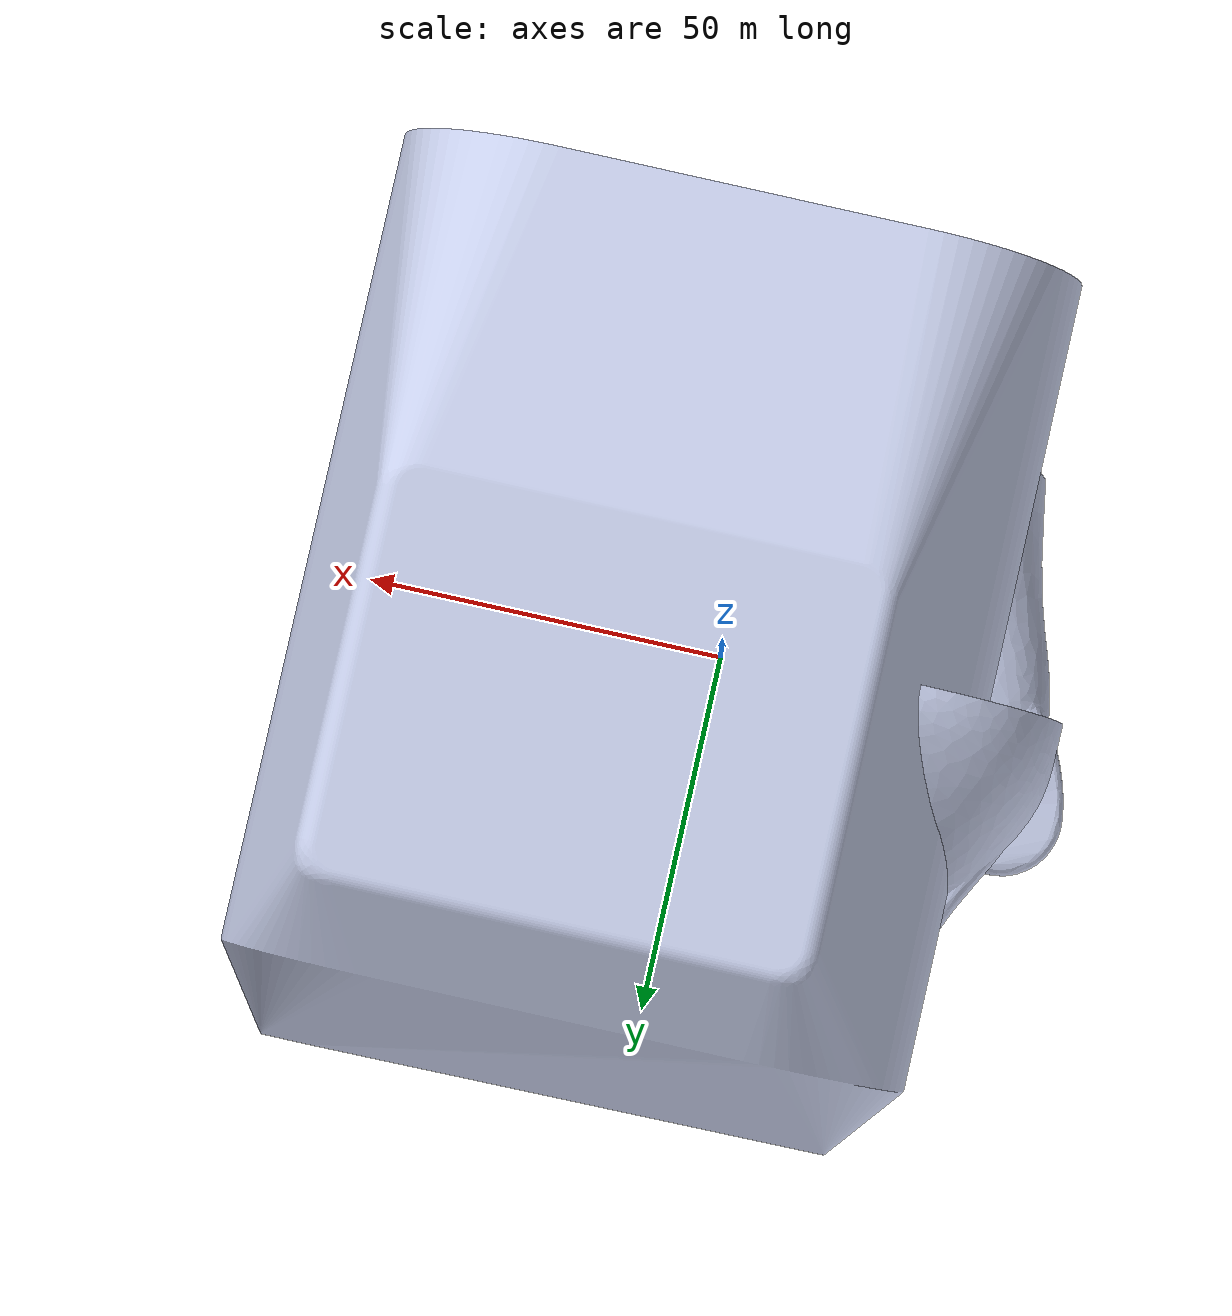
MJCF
<mujoco model="orcahand_left">
  <compiler angle="radian" meshdir="meshes/" autolimits="true" />
  <default>
    <geom density="800" condim="1" contype="0" conaffinity="0" />
    <position kp="300" dampratio="1.0" inheritrange="1" />
    <joint damping="0.0" armature="1.0" frictionloss="0.0" />
    <site size="0.005" type="sphere" rgba="1 0 0 1" group="3" />
  </default>
  <asset>
    <mesh name="left_ForeArmStructure-Model" file="left/ForeArmStructure-Model.stl" />
    <mesh name="left_ForeArmStructure-Model_Logo" file="left/ForeArmStructure-Model_Logo.stl" />
    <mesh name="left_I-AP-L" file="left/I-AP-L.stl" />
    <mesh name="left_I-FingerTipAssembly_I-DP-Skin" file="left/I-FingerTipAssembly_I-DP-Skin.stl" />
    <mesh name="left_I-IP_IP" file="left/I-IP_IP.stl" />
    <mesh name="left_I-PP" file="left/I-PP.stl" />
    <mesh name="left_I-PP_PP" file="left/I-PP_PP.stl" />
    <mesh name="left_I-PP_Skin" file="left/I-PP_Skin.stl" />
    <mesh name="left_L-Carpals" file="left/L-Carpals.stl" />
    <mesh name="left_L-T-AP" file="left/L-T-AP.stl" />
    <mesh name="left_M-AP" file="left/M-AP.stl" />
    <mesh name="left_M-FingerTipAssembly_M-DP-Skin" file="left/M-FingerTipAssembly_M-DP-Skin.stl" />
    <mesh name="left_M-IP_IP" file="left/M-IP_IP.stl" />
    <mesh name="left_M-PP" file="left/M-PP.stl" />
    <mesh name="left_M-PP_PP" file="left/M-PP_PP.stl" />
    <mesh name="left_M-PP_Skin" file="left/M-PP_Skin.stl" />
    <mesh name="left_P-AP" file="left/P-AP.stl" />
    <mesh name="left_P-FingerTipAssembly_P-DP-Skin" file="left/P-FingerTipAssembly_P-DP-Skin.stl" />
    <mesh name="left_P-IP_IP" file="left/P-IP_IP.stl" />
    <mesh name="left_P-PP" file="left/P-PP.stl" />
    <mesh name="left_P-PP_PP" file="left/P-PP_PP.stl" />
    <mesh name="left_P-PP_Skin" file="left/P-PP_Skin.stl" />
    <mesh name="left_T-DP_Skin" file="left/T-DP_Skin.stl" />
    <mesh name="left_T-DP_T-DP" file="left/T-DP_T-DP.stl" />
    <mesh name="left_T-PP" file="left/T-PP.stl" />
    <mesh name="left_T-PP_PP" file="left/T-PP_PP.stl" />
    <mesh name="left_T-PP_Skin" file="left/T-PP_Skin.stl" />
    <mesh name="left_T-TP-L" file="left/T-TP-L.stl" />
    <mesh name="left_TopTower-Model" file="left/TopTower-Model.stl" />
  </asset>
  <worldbody>
    <body name="left_base_tx">
      <inertial pos="0 0 0" mass="0.1" diaginertia="0.01 0.01 0.01" />
      <joint name="left_pos_x" pos="0 0 0" axis="1 0 0" type="slide" range="-5 5" />
      <body name="left_base_ty">
        <inertial pos="0 0 0" mass="0.1" diaginertia="0.01 0.01 0.01" />
        <joint name="left_pos_y" pos="0 0 0" axis="0 1 0" type="slide" range="-5 5" />
        <body name="left_base_tz">
          <inertial pos="0 0 0" mass="0.1" diaginertia="0.01 0.01 0.01" />
          <joint name="left_pos_z" pos="0 0 0" axis="0 0 1" type="slide" range="-5 5" />
          <body name="left_base_roll">
            <inertial pos="0 0 0" mass="0.1" diaginertia="0.01 0.01 0.01" />
            <joint name="left_rot_x" pos="0 0 0" axis="1 0 0" type="hinge" range="-6.28 6.28" />
            <body name="left_base_pitch">
              <inertial pos="0 0 0" mass="0.1" diaginertia="0.01 0.01 0.01" />
              <joint name="left_rot_y" pos="0 0 0" axis="0 1 0" type="hinge" range="-6.28 6.28" />
              <body name="left_base_yaw">
                <inertial pos="0 0 0" mass="0.1" diaginertia="0.01 0.01 0.01" />
                <joint name="left_rot_z" pos="0 0 0" axis="0 0 1" type="hinge" range="-6.28 6.28" />
                <body name="left_hand_palm" pos="0 0 0">
                  <inertial pos="0.006 0.001 0.039" mass="0.72" diaginertia="0.000713 0.000814 0.000208" />
                  <geom type="mesh" contype="0" conaffinity="0" group="1" density="0" rgba="0.79 0.82 0.93 1" mesh="left_ForeArmStructure-Model" name="left_hand_palm_visual" />
                  <geom name="collision_hand_left_palm_0" type="box" size="0.016 0.035 0.035" pos="0 0 0.05" group="3" rgba="0 1 0 1" />
                  <site name="left_palm" pos="0 0 0.05" type="box" size="0.01 0.02 0.03" />
                  <body name="left_forearm" pos="0 0 0" quat="1 0 0 0">
                    <geom type="mesh" contype="0" conaffinity="0" group="1" density="0" rgba="0.79 0.82 0.93 1" mesh="left_ForeArmStructure-Model" />
                    <body name="left_toptower" pos="-0.01000000000000002 0.05230000000000584 -2.08e-17" quat="-0.4999999999999985 0.4999999999999986 -0.5 -0.4999999999999999">
                      <geom type="mesh" contype="0" conaffinity="0" group="1" density="0" rgba="0.79 0.82 0.93 1" mesh="left_TopTower-Model" />
                      <body name="left_carpals" pos="-0.001877078063108616 0.005000000000000039 0.08950000067055244" quat="-0.7071067811865475 0 0 0.7071067811865495">
                        <inertial pos="0 0 0" mass="0.1" diaginertia="1e-4 1e-4 1e-4" />
                        <joint name="left_wrist" pos="0 0 0" axis="-1 -1.13e-16 5.94e-17" range="-1.134464 0.61086524" ref="0.0" />
                        <geom type="mesh" contype="0" conaffinity="0" group="1" density="0" rgba="0.79 0.82 0.93 1" mesh="left_L-Carpals" />
                        <body name="left_thumb_cmc" pos="-0.02121341227594994 0.01433246945435063 -0.02172481544690429" quat="0.6591193783565908 0.3595106003611906 -0.07247312029417424 -0.656552678874735">
                          <inertial pos="0 0 0" mass="0.01" diaginertia="1e-6 1e-6 1e-6" />
                          <joint name="left_t-cmc" pos="0 0 0" axis="-7.77e-16 5.41e-16 -1" range="-0.78539816 0.57595865" ref="0.0" />
                          <geom type="mesh" contype="0" conaffinity="0" group="1" density="0" rgba="0.79 0.82 0.93 1" mesh="left_T-TP-L" />
                          <geom name="collision_hand_left_thumb_3" type="capsule" size="0.0120" fromto="0 0 0.0200 0 0 0" group="3" rgba="0 1 0 1" />
                          <body name="left_thumb_ap" pos="-0.036 1.39e-17 -7.63e-17" quat="0.819152044288991 -0.5735764363510464 -2.22e-16 -1.55e-15">
                            <inertial pos="0 0 0" mass="0.01" diaginertia="1e-6 1e-6 1e-6" />
                            <joint name="left_t-abd" pos="0 0 0" axis="-1.5e-15 0.3420201433256641 0.9396926207859044" range="-0.31415927 0.95993109" ref="0.0" />
                            <geom type="mesh" contype="0" conaffinity="0" group="1" density="0" rgba="0.79 0.82 0.93 1" mesh="left_L-T-AP" />
                            <geom name="collision_hand_left_thumb_2" type="capsule" size="0.0120" fromto="0 0 0.0280 0 0 0" group="3" rgba="0 1 0 1" />
                            <body name="left_thumb_pp" pos="5.03e-17 1.02e-17 2.91e-17" quat="1.22e-15 0.7071067811865461 -1.39e-15 -0.7071067811865444">
                              <inertial pos="0 0 0" mass="0.01" diaginertia="1e-6 1e-6 1e-6" />
                              <joint name="left_t-mcp" pos="0 0 0" axis="-3.14e-15 -1 2.94e-15" range="-0.43633231 1.7453293" ref="0.0" />
                              <geom type="mesh" contype="0" conaffinity="0" group="1" density="0" rgba="0.79 0.82 0.93 1" mesh="left_T-PP" />
                              <geom name="collision_hand_left_thumb_1" type="capsule" size="0.0100" fromto="0 0 0.0300 0 0 0" group="3" rgba="0 1 0 1" />
                              <body name="left_thumb_dp" pos="0.001 5.2e-18 0.032" quat="1 0 -2.78e-17 -1.92e-15">
                                <inertial pos="0 0 0" mass="0.01" diaginertia="1e-6 1e-6 1e-6" />
                                <joint name="left_t-pip" pos="0 0 0" axis="4.72e-16 -1 3.16e-15" range="-0.26179939 1.8675023" ref="0.0" />
                                <geom name="collision_hand_left_thumb_0" type="capsule" size="0.0070" fromto="0 0 0.0200 0 0 0" group="3" rgba="0 1 0 1" />
                                <site name="left_thumb_tip" pos="0 0 0.0150" />
                                <site name="track_hand_left_thumb_tip" pos="0 0 0.0150" />
                                <site name="trace_hand_left_thumb_tip" pos="0 0 0.0150" />
                              </body>
                            </body>
                          </body>
                        </body>
                        <body name="left_index_ap" pos="-0.02557548169125012 0.0006809253025602396 0.03835732632869239" quat="0.519646788331587 0.5667240334680995 0.4317303415794619 -0.4715930421730138">
                          <inertial pos="0 0 0" mass="0.01" diaginertia="1e-6 1e-6 1e-6" />
                          <joint name="left_i-abd" pos="0 0 0" axis="-8.330000000000001e-17 3.33e-16 1" range="-0.43633231 0.52359878" ref="0.0" />
                          <geom type="mesh" contype="0" conaffinity="0" group="1" density="0" rgba="0.79 0.82 0.93 1" mesh="left_I-AP-L" />
                          <geom name="collision_hand_left_index_2" type="capsule" size="0.0100" fromto="0 0 0.0250 0 0 0" group="3" rgba="0 1 0 1" />
                          <body name="left_index_pp" pos="-0.0004009681508766414 -1.76e-17 2.89e-15" quat="0.7071067811865461 1.85e-15 -0.7071067811865465 -2.05e-15">
                            <inertial pos="0 0 0" mass="0.01" diaginertia="1e-6 1e-6 1e-6" />
                            <joint name="left_i-mcp" pos="0 0 0" axis="5.83e-15 -1 1.11e-16" range="-0.43633231 1.7453293" ref="0.0" />
                            <geom type="mesh" contype="0" conaffinity="0" group="1" density="0" rgba="0.79 0.82 0.93 1" mesh="left_I-PP" />
                            <geom name="collision_hand_left_index_1" type="capsule" size="0.0090" fromto="0 0 0.0370 0 0 0" group="3" rgba="0 1 0 1" />
                            <body name="left_index_tip" pos="0.0015 8.669999999999999e-18 0.037" quat="1 1.67e-16 4.16e-17 3.39e-15">
                              <inertial pos="0 0 0" mass="0.01" diaginertia="1e-6 1e-6 1e-6" />
                              <joint name="left_i-pip" pos="0 0 0" axis="-3.61e-15 -1 2.78e-16" range="-0.26179939 1.8675023" ref="0.0" />
                              <geom name="collision_hand_left_index_0" type="capsule" size="0.0070" fromto="0 0 0.0220 0 0 0" group="3" rgba="0 1 0 1" />
                              <site name="left_index_tip" pos="0 0 0.0150" />
                              <site name="track_hand_left_index_tip" pos="0 0 0.0150" />
                              <site name="trace_hand_left_index_tip" pos="0 0 0.0150" />
                            </body>
                          </body>
                        </body>
                        <body name="left_middle_ap" pos="-0.0007567300518294843 -0.001146326008916961 0.04825182678794436" quat="-0.5006540699144025 -0.5006540699144022 -0.4993450733492283 0.4993450733492286">
                          <inertial pos="0 0 0" mass="0.01" diaginertia="1e-6 1e-6 1e-6" />
                          <joint name="left_m-abd" pos="0 0 0" axis="1.11e-15 -2.22e-16 1" range="-0.4712389 0.4712389" ref="0.0" />
                          <geom type="mesh" contype="0" conaffinity="0" group="1" density="0" rgba="0.79 0.82 0.93 1" mesh="left_M-AP" />
                          <geom name="collision_hand_left_middle_2" type="capsule" size="0.0100" fromto="0 0 0.0250 0 0 0" group="3" rgba="0 1 0 1" />
                          <body name="left_middle_pp" pos="-0.000616967942905312 -1.84e-17 4.37e-15" quat="-0.7071067811865464 -2.22e-15 0.7071067811865461 2.22e-15">
                            <inertial pos="0 0 0" mass="0.01" diaginertia="1e-6 1e-6 1e-6" />
                            <joint name="left_m-mcp" pos="0 0 0" axis="6.05e-15 -1 -1.11e-16" range="-0.43633231 1.7453293" ref="0.0" />
                            <geom type="mesh" contype="0" conaffinity="0" group="1" density="0" rgba="0.79 0.82 0.93 1" mesh="left_M-PP" />
                            <geom name="collision_hand_left_middle_1" type="capsule" size="0.0090" fromto="0 0 0.0400 0 0 0" group="3" rgba="0 1 0 1" />
                            <body name="left_middle_tip" pos="0.002 -3.47e-18 0.04" quat="1 2.78e-16 1.39e-16 3.28e-15">
                              <inertial pos="0 0 0" mass="0.01" diaginertia="1e-6 1e-6 1e-6" />
                              <joint name="left_m-pip" pos="0 0 0" axis="-3.28e-15 -1 4.44e-16" range="-0.26179939 1.8675023" ref="0.0" />
                              <geom name="collision_hand_left_middle_0" type="capsule" size="0.0070" fromto="0 0 0.0220 0 0 0" group="3" rgba="0 1 0 1" />
                              <site name="left_middle_tip" pos="0 0 0.0150" />
                              <site name="track_hand_left_middle_tip" pos="0 0 0.0150" />
                              <site name="trace_hand_left_middle_tip" pos="0 0 0.0150" />
                            </body>
                          </body>
                        </body>
                        <body name="left_ring_ap" pos="0.02300540741341827 -0.0001014498859375039 0.04085073553625944" quat="-0.4851713041498216 -0.4384920443232376 -0.554729417883375 0.514401405159008">
                          <inertial pos="0 0 0" mass="0.01" diaginertia="1e-6 1e-6 1e-6" />
                          <joint name="left_r-abd" pos="0 0 0" axis="8.88e-16 -5.55e-17 1" range="-0.4712389 0.4712389" ref="0.0" />
                          <geom type="mesh" contype="0" conaffinity="0" group="1" density="0" rgba="0.79 0.82 0.93 1" mesh="left_M-AP" />
                          <geom name="collision_hand_left_ring_2" type="capsule" size="0.0100" fromto="0 0 0.0250 0 0 0" group="3" rgba="0 1 0 1" />
                          <body name="left_ring_pp" pos="-0.0006169679429055062 2.99e-17 4.53e-15" quat="-0.7071067811865464 -2.1e-15 0.7071067811865462 2e-15">
                            <inertial pos="0 0 0" mass="0.01" diaginertia="1e-6 1e-6 1e-6" />
                            <joint name="left_r-mcp" pos="0 0 0" axis="5.94e-15 -1 1.11e-16" range="-0.43633231 1.7453293" ref="0.0" />
                            <geom type="mesh" contype="0" conaffinity="0" group="1" density="0" rgba="0.79 0.82 0.93 1" mesh="left_M-PP" />
                            <geom name="collision_hand_left_ring_1" type="capsule" size="0.0090" fromto="0 0 0.0400 0 0 0" group="3" rgba="0 1 0 1" />
                            <body name="left_ring_tip" pos="0.002 -6.94e-18 0.04" quat="1 1.11e-16 5.55e-17 3.11e-15">
                              <inertial pos="0 0 0" mass="0.01" diaginertia="1e-6 1e-6 1e-6" />
                              <joint name="left_r-pip" pos="0 0 0" axis="-2.94e-15 -1 2.22e-16" range="-0.26179939 1.8675023" ref="0.0" />
                              <geom name="collision_hand_left_ring_0" type="capsule" size="0.0070" fromto="0 0 0.0220 0 0 0" group="3" rgba="0 1 0 1" />
                              <site name="left_ring_tip" pos="0 0 0.0150" />
                              <site name="track_hand_left_ring_tip" pos="0 0 0.0150" />
                              <site name="trace_hand_left_ring_tip" pos="0 0 0.0150" />
                            </body>
                          </body>
                        </body>
                        <body name="left_pinky_ap" pos="0.04666877715017955 0.00500098395792942 0.02910141745861505" quat="-0.4573184612560756 -0.3401988014151619 -0.6138690651598068 0.5461587418964287">
                          <inertial pos="0 0 0" mass="0.01" diaginertia="1e-6 1e-6 1e-6" />
                          <joint name="left_p-abd" pos="0 0 0" axis="9.71e-16 1.67e-16 1" range="-0.52359878 0.52359878" ref="0.0" />
                          <geom type="mesh" contype="0" conaffinity="0" group="1" density="0" rgba="0.79 0.82 0.93 1" mesh="left_P-AP" />
                          <geom name="collision_hand_left_pinky_2" type="capsule" size="0.0090" fromto="0 0 0.0230 0 0 0" group="3" rgba="0 1 0 1" />
                          <body name="left_pinky_pp" pos="-7.08e-17 -3.18e-17 -1.36e-17" quat="-0.7071067811865464 -2e-15 0.707106781186546 2.11e-15">
                            <inertial pos="0 0 0" mass="0.01" diaginertia="1e-6 1e-6 1e-6" />
                            <joint name="left_p-mcp" pos="0 0 0" axis="6.44e-15 -1 6.66e-16" range="-0.43633231 1.7453293" ref="0.0" />
                            <geom type="mesh" contype="0" conaffinity="0" group="1" density="0" rgba="0.79 0.82 0.93 1" mesh="left_P-PP" />
                            <geom name="collision_hand_left_pinky_1" type="capsule" size="0.0080" fromto="0 0 0.0310 0 0 0" group="3" rgba="0 1 0 1" />
                            <body name="left_pinky_tip" pos="0.001 3.12e-17 0.031" quat="1 5.55e-17 1.39e-17 3.11e-15">
                              <inertial pos="0 0 0" mass="0.01" diaginertia="1e-6 1e-6 1e-6" />
                              <joint name="left_p-pip" pos="0 0 0" axis="-2.61e-15 -1 3.89e-16" range="-0.26179939 1.8675023" ref="0.0" />
                              <geom name="collision_hand_left_pinky_0" type="capsule" size="0.0060" fromto="0 0 0.0200 0 0 0" group="3" rgba="0 1 0 1" />
                              <site name="left_pinky_tip" pos="0 0 0.0120" />
                              <site name="track_hand_left_pinky_tip" pos="0 0 0.0120" />
                              <site name="trace_hand_left_pinky_tip" pos="0 0 0.0120" />
                            </body>
                          </body>
                        </body>
                      </body>
                    </body>
                  </body>
                </body>
              </body>
            </body>
          </body>
        </body>
      </body>
    </body>
  </worldbody>
  <actuator>
    <position name="left_pos_x_position" joint="left_pos_x" kp="1000" />
    <position name="left_pos_y_position" joint="left_pos_y" kp="1000" />
    <position name="left_pos_z_position" joint="left_pos_z" kp="1000" />
    <position name="left_rot_x_position" joint="left_rot_x" kp="1000" />
    <position name="left_rot_y_position" joint="left_rot_y" kp="1000" />
    <position name="left_rot_z_position" joint="left_rot_z" kp="1000" />
    <position name="left_wrist_position" joint="left_wrist" />
    <position name="left_t-cmc_position" joint="left_t-cmc" />
    <position name="left_t-abd_position" joint="left_t-abd" />
    <position name="left_t-mcp_position" joint="left_t-mcp" />
    <position name="left_t-pip_position" joint="left_t-pip" />
    <position name="left_i-abd_position" joint="left_i-abd" />
    <position name="left_i-mcp_position" joint="left_i-mcp" />
    <position name="left_i-pip_position" joint="left_i-pip" />
    <position name="left_m-abd_position" joint="left_m-abd" />
    <position name="left_m-mcp_position" joint="left_m-mcp" />
    <position name="left_m-pip_position" joint="left_m-pip" />
    <position name="left_r-abd_position" joint="left_r-abd" />
    <position name="left_r-mcp_position" joint="left_r-mcp" />
    <position name="left_r-pip_position" joint="left_r-pip" />
    <position name="left_p-abd_position" joint="left_p-abd" />
    <position name="left_p-mcp_position" joint="left_p-mcp" />
    <position name="left_p-pip_position" joint="left_p-pip" />
  </actuator>
</mujoco>
